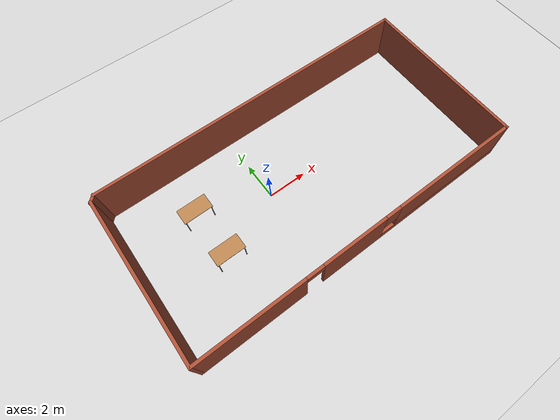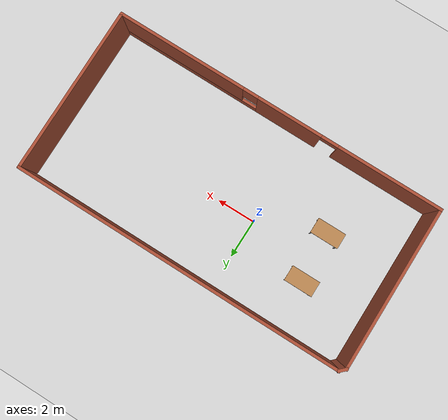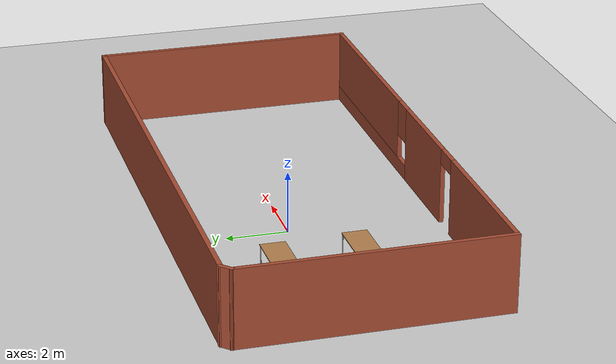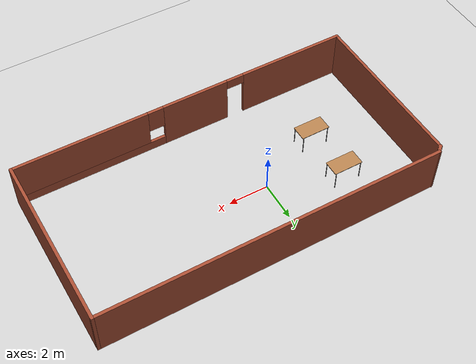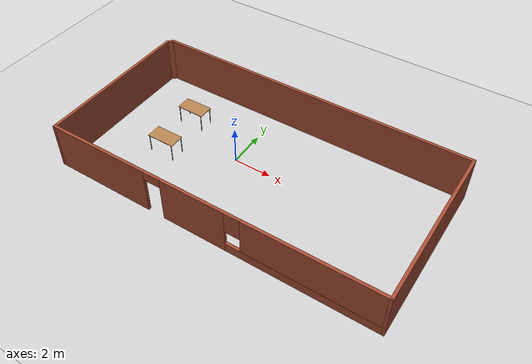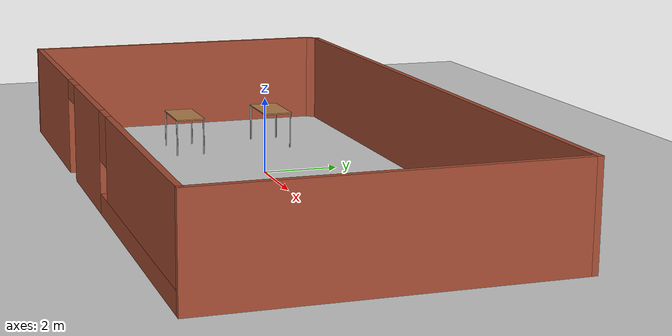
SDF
<sdf version="1.6">
 <world name="default">
  <light name="sun" type="directional">
   <pose>0 0 10 0 -0 0</pose>
   <diffuse>0.8 0.8 0.8 1</diffuse>
   <specular>0.2 0.2 0.2 1</specular>
   <attenuation>
    <range>1000</range>
    <constant>0.9</constant>
    <linear>0.01</linear>
    <quadratic>0.001</quadratic>
   </attenuation>
   <direction>-0.5 0.1 -0.9</direction>
  </light>
  <model name="ground_plane">
   <static>1</static>
   <link name="link">
    <collision name="collision">
     <geometry><plane><normal>0 0 1</normal><size>100 100</size></plane></geometry>
     <surface><friction><ode><mu>100</mu><mu2>50</mu2></ode></friction></surface>
    </collision>
    <visual name="visual">
     <cast_shadows>0</cast_shadows>
     <geometry><plane><normal>0 0 1</normal><size>100 100</size></plane></geometry>
     <material>
      <script><uri>file://media/materials/scripts/gazebo.material</uri><name>Gazebo/Grey</name></script>
     </material>
    </visual>
   </link>
  </model>
  <gravity>0 0 -9.8</gravity>
  <magnetic_field>6e-06 2.3e-05 -4.2e-05</magnetic_field>
  <atmosphere type="adiabatic"/>
  <physics name="default_physics" default="0" type="ode">
   <max_step_size>0.001</max_step_size>
   <real_time_factor>1</real_time_factor>
   <real_time_update_rate>1000</real_time_update_rate>
  </physics>
  <scene><ambient>0.4 0.4 0.4 1</ambient><background>0.7 0.7 0.7 1</background><shadows>1</shadows></scene>
  <spherical_coordinates>
   <surface_model>EARTH_WGS84</surface_model>
   <latitude_deg>38.161479</latitude_deg>
   <longitude_deg>-122.454630</longitude_deg>
   <elevation>488.0</elevation>
   <heading_deg>0</heading_deg>
  </spherical_coordinates>
  <model name="trial_1">
   <pose>1.71013 -0.519332 0 0 -0 0</pose>
   <link name="Wall_0">
    <collision name="Wall_0_Collision">
     <geometry><box><size>8.5 0.15 2.5</size></box></geometry>
     <pose>0 0 1.25 0 -0 0</pose>
    </collision>
    <visual name="Wall_0_Visual">
     <pose>0 0 1.25 0 -0 0</pose>
     <geometry><box><size>8.5 0.15 2.5</size></box></geometry>
     <material>
      <script><uri>file://media/materials/scripts/gazebo.material</uri><name>Gazebo/Bricks</name></script>
      <ambient>1 1 1 1</ambient>
     </material>
     <meta><layer>0</layer></meta>
    </visual>
    <pose>-8.65947 -0.140533 0 0 -0 -1.5708</pose>
   </link>
   <link name="Wall_1">
    <pose>0.015532 -4.31553 0 0 -0 0</pose>
    <visual name="Wall_1_Visual_0">
     <pose>-5.98554 0 1.25 0 -0 0</pose>
     <geometry><box><size>5.52891 0.15 2.5</size></box></geometry>
     <material>
      <script><uri>file://media/materials/scripts/gazebo.material</uri><name>Gazebo/Bricks</name></script>
      <ambient>1 1 1 1</ambient>
     </material>
     <meta><layer>0</layer></meta>
    </visual>
    <collision name="Wall_1_Collision_0">
     <geometry><box><size>5.52891 0.15 2.5</size></box></geometry>
     <pose>-5.98554 0 1.25 0 -0 0</pose>
    </collision>
    <visual name="Wall_1_Visual_1">
     <pose>-0.60477 0 1.25 0 -0 0</pose>
     <geometry><box><size>3.43263 0.15 2.5</size></box></geometry>
     <material>
      <script><uri>file://media/materials/scripts/gazebo.material</uri><name>Gazebo/Bricks</name></script>
      <ambient>1 1 1 1</ambient>
     </material>
     <meta><layer>0</layer></meta>
    </visual>
    <collision name="Wall_1_Collision_1">
     <geometry><box><size>3.43263 0.15 2.5</size></box></geometry>
     <pose>-0.60477 0 1.25 0 -0 0</pose>
    </collision>
    <visual name="Wall_1_Visual_2">
     <pose>4.93077 0 0.25 0 -0 0</pose>
     <geometry><box><size>7.63845 0.15 0.5</size></box></geometry>
     <material>
      <script><uri>file://media/materials/scripts/gazebo.material</uri><name>Gazebo/Bricks</name></script>
      <ambient>1 1 1 1</ambient>
     </material>
     <meta><layer>0</layer></meta>
    </visual>
    <collision name="Wall_1_Collision_2">
     <geometry><box><size>7.63845 0.15 0.5</size></box></geometry>
     <pose>4.93077 0 0.25 0 -0 0</pose>
    </collision>
    <visual name="Wall_1_Visual_3">
     <pose>5.33077 0 1.5 0 -0 0</pose>
     <geometry><box><size>6.83845 0.15 2</size></box></geometry>
     <material>
      <script><uri>file://media/materials/scripts/gazebo.material</uri><name>Gazebo/Bricks</name></script>
      <ambient>1 1 1 1</ambient>
     </material>
     <meta><layer>0</layer></meta>
    </visual>
    <collision name="Wall_1_Collision_3">
     <geometry><box><size>6.83845 0.15 2</size></box></geometry>
     <pose>5.33077 0 1.5 0 -0 0</pose>
    </collision>
    <visual name="Wall_1_Visual_4">
     <pose>1.51155 0 1.9 0 -0 0</pose>
     <geometry><box><size>0.8 0.15 1.2</size></box></geometry>
     <material>
      <script><uri>file://media/materials/scripts/gazebo.material</uri><name>Gazebo/Bricks</name></script>
      <ambient>1 1 1 1</ambient>
     </material>
     <meta><layer>0</layer></meta>
    </visual>
    <collision name="Wall_1_Collision_4">
     <geometry><box><size>0.8 0.15 1.2</size></box></geometry>
     <pose>1.51155 0 1.9 0 -0 0</pose>
    </collision>
    <visual name="Wall_1_Visual_5">
     <pose>-2.77109 0 2.25 0 -0 0</pose>
     <geometry><box><size>0.9 0.15 0.5</size></box></geometry>
     <material>
      <script><uri>file://media/materials/scripts/gazebo.material</uri><name>Gazebo/Bricks</name></script>
      <ambient>1 1 1 1</ambient>
     </material>
     <meta><layer>0</layer></meta>
    </visual>
    <collision name="Wall_1_Collision_5">
     <geometry><box><size>0.9 0.15 0.5</size></box></geometry>
     <pose>-2.77109 0 2.25 0 -0 0</pose>
    </collision>
   </link>
   <link name="Wall_2">
    <collision name="Wall_2_Collision">
     <geometry><box><size>8.75 0.15 2.5</size></box></geometry>
     <pose>0 0 1.25 0 -0 0</pose>
    </collision>
    <visual name="Wall_2_Visual">
     <pose>0 0 1.25 0 -0 0</pose>
     <geometry><box><size>8.75 0.15 2.5</size></box></geometry>
     <material>
      <script><uri>file://media/materials/scripts/gazebo.material</uri><name>Gazebo/Bricks</name></script>
      <ambient>0.760784 0.662745 0.627451 1</ambient>
     </material>
     <meta><layer>0</layer></meta>
    </visual>
    <pose>8.69053 -0.015533 0 0 -0 1.5708</pose>
   </link>
   <link name="Wall_3">
    <collision name="Wall_3_Collision">
     <geometry><box><size>17.25 0.15 2.5</size></box></geometry>
     <pose>0 0 1.25 0 -0 0</pose>
    </collision>
    <visual name="Wall_3_Visual">
     <pose>0 0 1.25 0 -0 0</pose>
     <geometry><box><size>17.25 0.15 2.5</size></box></geometry>
     <material>
      <script><uri>file://media/materials/scripts/gazebo.material</uri><name>Gazebo/Bricks</name></script>
      <ambient>1 1 1 1</ambient>
     </material>
     <meta><layer>0</layer></meta>
    </visual>
    <pose>0.140532 4.28447 0 0 -0 3.14159</pose>
   </link>
   <link name="Wall_4">
    <collision name="Wall_4_Collision">
     <geometry><box><size>0.503553 0.15 2.5</size></box></geometry>
     <pose>0 0 1.25 0 -0 0</pose>
    </collision>
    <visual name="Wall_4_Visual">
     <pose>0 0 1.25 0 -0 0</pose>
     <geometry><box><size>0.503553 0.15 2.5</size></box></geometry>
     <material>
      <script><uri>file://media/materials/scripts/gazebo.material</uri><name>Gazebo/Bricks</name></script>
      <ambient>1 1 1 1</ambient>
     </material>
     <meta><layer>0</layer></meta>
    </visual>
    <pose>-8.53447 4.15947 0 0 -0 -2.35619</pose>
   </link>
   <static>1</static>
  </model>
  <model name="table">
   <static>1</static>
   <link name="link">
    <collision name="surface">
     <pose>0 0 1 0 -0 0</pose>
     <geometry><box><size>1.5 0.8 0.03</size></box></geometry>
     <surface><friction><ode><mu>0.6</mu><mu2>0.6</mu2></ode></friction></surface>
    </collision>
    <visual name="visual1">
     <pose>0 0 1 0 -0 0</pose>
     <geometry><box><size>1.5 0.8 0.03</size></box></geometry>
     <material>
      <script><uri>file://media/materials/scripts/gazebo.material</uri><name>Gazebo/Wood</name></script>
     </material>
    </visual>
    <collision name="front_left_leg">
     <pose>0.68 0.38 0.5 0 -0 0</pose>
     <geometry><cylinder><radius>0.02</radius><length>1</length></cylinder></geometry>
    </collision>
    <visual name="front_left_leg">
     <pose>0.68 0.38 0.5 0 -0 0</pose>
     <geometry><cylinder><radius>0.02</radius><length>1</length></cylinder></geometry>
     <material>
      <script><uri>file://media/materials/scripts/gazebo.material</uri><name>Gazebo/Grey</name></script>
     </material>
    </visual>
    <collision name="front_right_leg">
     <pose>0.68 -0.38 0.5 0 -0 0</pose>
     <geometry><cylinder><radius>0.02</radius><length>1</length></cylinder></geometry>
    </collision>
    <visual name="front_right_leg">
     <pose>0.68 -0.38 0.5 0 -0 0</pose>
     <geometry><cylinder><radius>0.02</radius><length>1</length></cylinder></geometry>
     <material>
      <script><uri>file://media/materials/scripts/gazebo.material</uri><name>Gazebo/Grey</name></script>
     </material>
    </visual>
    <collision name="back_right_leg">
     <pose>-0.68 -0.38 0.5 0 -0 0</pose>
     <geometry><cylinder><radius>0.02</radius><length>1</length></cylinder></geometry>
    </collision>
    <visual name="back_right_leg">
     <pose>-0.68 -0.38 0.5 0 -0 0</pose>
     <geometry><cylinder><radius>0.02</radius><length>1</length></cylinder></geometry>
     <material>
      <script><uri>file://media/materials/scripts/gazebo.material</uri><name>Gazebo/Grey</name></script>
     </material>
    </visual>
    <collision name="back_left_leg">
     <pose>-0.68 0.38 0.5 0 -0 0</pose>
     <geometry><cylinder><radius>0.02</radius><length>1</length></cylinder></geometry>
    </collision>
    <visual name="back_left_leg">
     <pose>-0.68 0.38 0.5 0 -0 0</pose>
     <geometry><cylinder><radius>0.02</radius><length>1</length></cylinder></geometry>
     <material>
      <script><uri>file://media/materials/scripts/gazebo.material</uri><name>Gazebo/Grey</name></script>
     </material>
    </visual>
   </link>
   <pose>-3.43825 1.22338 0 0 -0 0</pose>
  </model>
  <model name="table_0">
   <static>1</static>
   <link name="link">
    <collision name="surface">
     <pose>0 0 1 0 -0 0</pose>
     <geometry><box><size>1.5 0.8 0.03</size></box></geometry>
     <surface><friction><ode><mu>0.6</mu><mu2>0.6</mu2></ode></friction></surface>
    </collision>
    <visual name="visual1">
     <pose>0 0 1 0 -0 0</pose>
     <geometry><box><size>1.5 0.8 0.03</size></box></geometry>
     <material>
      <script><uri>file://media/materials/scripts/gazebo.material</uri><name>Gazebo/Wood</name></script>
     </material>
    </visual>
    <collision name="front_left_leg">
     <pose>0.68 0.38 0.5 0 -0 0</pose>
     <geometry><cylinder><radius>0.02</radius><length>1</length></cylinder></geometry>
    </collision>
    <visual name="front_left_leg">
     <pose>0.68 0.38 0.5 0 -0 0</pose>
     <geometry><cylinder><radius>0.02</radius><length>1</length></cylinder></geometry>
     <material>
      <script><uri>file://media/materials/scripts/gazebo.material</uri><name>Gazebo/Grey</name></script>
     </material>
    </visual>
    <collision name="front_right_leg">
     <pose>0.68 -0.38 0.5 0 -0 0</pose>
     <geometry><cylinder><radius>0.02</radius><length>1</length></cylinder></geometry>
    </collision>
    <visual name="front_right_leg">
     <pose>0.68 -0.38 0.5 0 -0 0</pose>
     <geometry><cylinder><radius>0.02</radius><length>1</length></cylinder></geometry>
     <material>
      <script><uri>file://media/materials/scripts/gazebo.material</uri><name>Gazebo/Grey</name></script>
     </material>
    </visual>
    <collision name="back_right_leg">
     <pose>-0.68 -0.38 0.5 0 -0 0</pose>
     <geometry><cylinder><radius>0.02</radius><length>1</length></cylinder></geometry>
    </collision>
    <visual name="back_right_leg">
     <pose>-0.68 -0.38 0.5 0 -0 0</pose>
     <geometry><cylinder><radius>0.02</radius><length>1</length></cylinder></geometry>
     <material>
      <script><uri>file://media/materials/scripts/gazebo.material</uri><name>Gazebo/Grey</name></script>
     </material>
    </visual>
    <collision name="back_left_leg">
     <pose>-0.68 0.38 0.5 0 -0 0</pose>
     <geometry><cylinder><radius>0.02</radius><length>1</length></cylinder></geometry>
    </collision>
    <visual name="back_left_leg">
     <pose>-0.68 0.38 0.5 0 -0 0</pose>
     <geometry><cylinder><radius>0.02</radius><length>1</length></cylinder></geometry>
     <material>
      <script><uri>file://media/materials/scripts/gazebo.material</uri><name>Gazebo/Grey</name></script>
     </material>
    </visual>
   </link>
   <pose>-3.31031 -1.35676 0 0 -0 0</pose>
  </model>
 </world>
</sdf>
